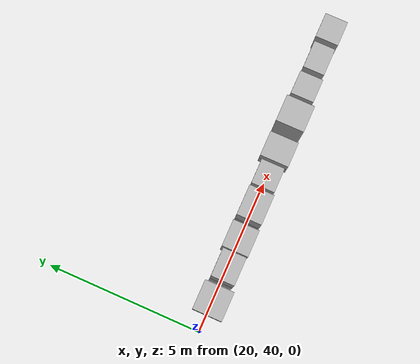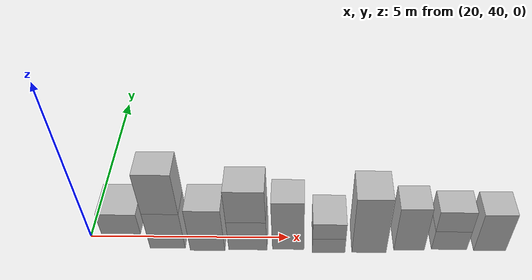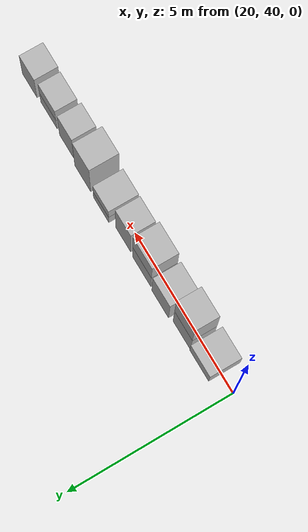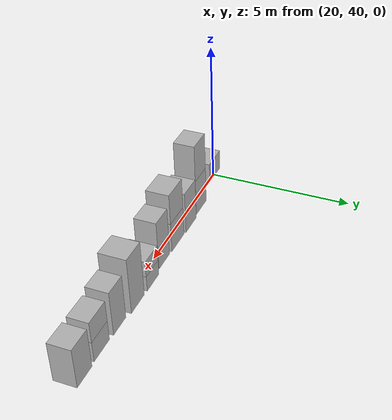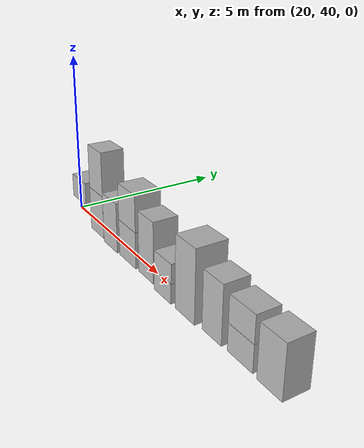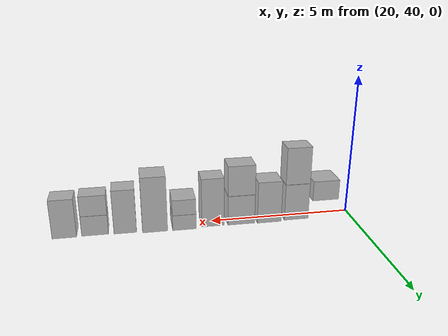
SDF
<sdf version="1.5">
 <world name="default">
  <model name="ground_plane">
   <static>true</static>
   <link name="link">
    <collision name="collision">
     <geometry><plane><normal>0 0 1</normal><size>250 250</size></plane></geometry>
     <surface><friction><ode><mu>1</mu><mu2>1</mu2></ode></friction></surface>
    </collision>
    <visual name="grass">
     <cast_shadows>false</cast_shadows>
     <geometry><mesh><uri>file://grass_plane/meshes/grass_plane.dae</uri></mesh></geometry>
    </visual>
   </link>
  </model>
  <model name="Cardboard_box_top_246">
   <link name="link_0">
    <pose>21 40 0.729825312838 0 0 0</pose>
    <inertial>
     <mass>1</mass>
     <inertia>
      <ixx>0.166667</ixx>
      <ixy>0</ixy>
      <ixz>0</ixz>
      <iyy>0.166667</iyy>
      <iyz>0</iyz>
      <izz>0.166667</izz>
     </inertia>
    </inertial>
    <collision name="collision">
     <geometry>
      <mesh>
       <uri>model://Cardboard_box/meshes/cardboard_box.dae</uri>
       <scale>2.36780935181 2.37298798049 1.82456328209</scale>
      </mesh>
     </geometry>
    </collision>
    <visual name="visual">
     <geometry>
      <mesh>
       <uri>model://Cardboard_box/meshes/cardboard_box.dae</uri>
       <scale>2.36780935181 2.37298798049 1.82456328209</scale>
      </mesh>
     </geometry>
    </visual>
   </link>
   <static>1</static>
  </model>
  <model name="Cardboard_box_247">
   <link name="link_0">
    <pose>22 40 0 0 0 0</pose>
    <inertial>
     <mass>1</mass>
     <inertia>
      <ixx>0.166667</ixx>
      <ixy>0</ixy>
      <ixz>0</ixz>
      <iyy>0.166667</iyy>
      <iyz>0</iyz>
      <izz>0.166667</izz>
     </inertia>
    </inertial>
    <collision name="collision">
     <geometry>
      <mesh>
       <uri>model://Cardboard_box/meshes/cardboard_box.dae</uri>
       <scale>2.19795202082 1.82756459754 3.39685263051</scale>
      </mesh>
     </geometry>
    </collision>
    <visual name="visual">
     <geometry>
      <mesh>
       <uri>model://Cardboard_box/meshes/cardboard_box.dae</uri>
       <scale>2.19795202082 1.82756459754 3.39685263051</scale>
      </mesh>
     </geometry>
    </visual>
   </link>
   <static>1</static>
  </model>
  <model name="Cardboard_box_top_247">
   <link name="link_0">
    <pose>22 40 1.3587410522 0 0 0</pose>
    <inertial>
     <mass>1</mass>
     <inertia>
      <ixx>0.166667</ixx>
      <ixy>0</ixy>
      <ixz>0</ixz>
      <iyy>0.166667</iyy>
      <iyz>0</iyz>
      <izz>0.166667</izz>
     </inertia>
    </inertial>
    <collision name="collision">
     <geometry>
      <mesh>
       <uri>model://Cardboard_box/meshes/cardboard_box.dae</uri>
       <scale>2.19795202082 1.82756459754 3.39685263051</scale>
      </mesh>
     </geometry>
    </collision>
    <visual name="visual">
     <geometry>
      <mesh>
       <uri>model://Cardboard_box/meshes/cardboard_box.dae</uri>
       <scale>2.19795202082 1.82756459754 3.39685263051</scale>
      </mesh>
     </geometry>
    </visual>
   </link>
   <static>1</static>
  </model>
  <model name="Cardboard_box_248">
   <link name="link_0">
    <pose>23 40 0 0 0 0</pose>
    <inertial>
     <mass>1</mass>
     <inertia>
      <ixx>0.166667</ixx>
      <ixy>0</ixy>
      <ixz>0</ixz>
      <iyy>0.166667</iyy>
      <iyz>0</iyz>
      <izz>0.166667</izz>
     </inertia>
    </inertial>
    <collision name="collision">
     <geometry>
      <mesh>
       <uri>model://Cardboard_box/meshes/cardboard_box.dae</uri>
       <scale>2.16110780099 2.12256929466 3.87944365148</scale>
      </mesh>
     </geometry>
    </collision>
    <visual name="visual">
     <geometry>
      <mesh>
       <uri>model://Cardboard_box/meshes/cardboard_box.dae</uri>
       <scale>2.16110780099 2.12256929466 3.87944365148</scale>
      </mesh>
     </geometry>
    </visual>
   </link>
   <static>1</static>
  </model>
  <model name="Cardboard_box_249">
   <link name="link_0">
    <pose>24 40 0 0 0 0</pose>
    <inertial>
     <mass>1</mass>
     <inertia>
      <ixx>0.166667</ixx>
      <ixy>0</ixy>
      <ixz>0</ixz>
      <iyy>0.166667</iyy>
      <iyz>0</iyz>
      <izz>0.166667</izz>
     </inertia>
    </inertial>
    <collision name="collision">
     <geometry>
      <mesh>
       <uri>model://Cardboard_box/meshes/cardboard_box.dae</uri>
       <scale>2.39841780201 1.97761718626 2.74652660842</scale>
      </mesh>
     </geometry>
    </collision>
    <visual name="visual">
     <geometry>
      <mesh>
       <uri>model://Cardboard_box/meshes/cardboard_box.dae</uri>
       <scale>2.39841780201 1.97761718626 2.74652660842</scale>
      </mesh>
     </geometry>
    </visual>
   </link>
   <static>1</static>
  </model>
  <model name="Cardboard_box_top_249">
   <link name="link_0">
    <pose>24 40 1.09861064337 0 0 0</pose>
    <inertial>
     <mass>1</mass>
     <inertia>
      <ixx>0.166667</ixx>
      <ixy>0</ixy>
      <ixz>0</ixz>
      <iyy>0.166667</iyy>
      <iyz>0</iyz>
      <izz>0.166667</izz>
     </inertia>
    </inertial>
    <collision name="collision">
     <geometry>
      <mesh>
       <uri>model://Cardboard_box/meshes/cardboard_box.dae</uri>
       <scale>2.39841780201 1.97761718626 2.74652660842</scale>
      </mesh>
     </geometry>
    </collision>
    <visual name="visual">
     <geometry>
      <mesh>
       <uri>model://Cardboard_box/meshes/cardboard_box.dae</uri>
       <scale>2.39841780201 1.97761718626 2.74652660842</scale>
      </mesh>
     </geometry>
    </visual>
   </link>
   <static>1</static>
  </model>
  <model name="Cardboard_box_250">
   <link name="link_0">
    <pose>25 40 0 0 0 0</pose>
    <inertial>
     <mass>1</mass>
     <inertia>
      <ixx>0.166667</ixx>
      <ixy>0</ixy>
      <ixz>0</ixz>
      <iyy>0.166667</iyy>
      <iyz>0</iyz>
      <izz>0.166667</izz>
     </inertia>
    </inertial>
    <collision name="collision">
     <geometry>
      <mesh>
       <uri>model://Cardboard_box/meshes/cardboard_box.dae</uri>
       <scale>1.96541165493 1.86296537437 4.49485233708</scale>
      </mesh>
     </geometry>
    </collision>
    <visual name="visual">
     <geometry>
      <mesh>
       <uri>model://Cardboard_box/meshes/cardboard_box.dae</uri>
       <scale>1.96541165493 1.86296537437 4.49485233708</scale>
      </mesh>
     </geometry>
    </visual>
   </link>
   <static>1</static>
  </model>
  <model name="Cardboard_box_251">
   <link name="link_0">
    <pose>26 40 0 0 0 0</pose>
    <inertial>
     <mass>1</mass>
     <inertia>
      <ixx>0.166667</ixx>
      <ixy>0</ixy>
      <ixz>0</ixz>
      <iyy>0.166667</iyy>
      <iyz>0</iyz>
      <izz>0.166667</izz>
     </inertia>
    </inertial>
    <collision name="collision">
     <geometry>
      <mesh>
       <uri>model://Cardboard_box/meshes/cardboard_box.dae</uri>
       <scale>2.03698041437 2.32306978243 1.40808855221</scale>
      </mesh>
     </geometry>
    </collision>
    <visual name="visual">
     <geometry>
      <mesh>
       <uri>model://Cardboard_box/meshes/cardboard_box.dae</uri>
       <scale>2.03698041437 2.32306978243 1.40808855221</scale>
      </mesh>
     </geometry>
    </visual>
   </link>
   <static>1</static>
  </model>
  <model name="Cardboard_box_top_251">
   <link name="link_0">
    <pose>26 40 0.563235420882 0 0 0</pose>
    <inertial>
     <mass>1</mass>
     <inertia>
      <ixx>0.166667</ixx>
      <ixy>0</ixy>
      <ixz>0</ixz>
      <iyy>0.166667</iyy>
      <iyz>0</iyz>
      <izz>0.166667</izz>
     </inertia>
    </inertial>
    <collision name="collision">
     <geometry>
      <mesh>
       <uri>model://Cardboard_box/meshes/cardboard_box.dae</uri>
       <scale>2.03698041437 2.32306978243 1.40808855221</scale>
      </mesh>
     </geometry>
    </collision>
    <visual name="visual">
     <geometry>
      <mesh>
       <uri>model://Cardboard_box/meshes/cardboard_box.dae</uri>
       <scale>2.03698041437 2.32306978243 1.40808855221</scale>
      </mesh>
     </geometry>
    </visual>
   </link>
   <static>1</static>
  </model>
  <model name="Cardboard_box_252">
   <link name="link_0">
    <pose>27 40 0 0 0 0</pose>
    <inertial>
     <mass>1</mass>
     <inertia>
      <ixx>0.166667</ixx>
      <ixy>0</ixy>
      <ixz>0</ixz>
      <iyy>0.166667</iyy>
      <iyz>0</iyz>
      <izz>0.166667</izz>
     </inertia>
    </inertial>
    <collision name="collision">
     <geometry>
      <mesh>
       <uri>model://Cardboard_box/meshes/cardboard_box.dae</uri>
       <scale>2.13372426018 2.25000771397 5.07879744296</scale>
      </mesh>
     </geometry>
    </collision>
    <visual name="visual">
     <geometry>
      <mesh>
       <uri>model://Cardboard_box/meshes/cardboard_box.dae</uri>
       <scale>2.13372426018 2.25000771397 5.07879744296</scale>
      </mesh>
     </geometry>
    </visual>
   </link>
   <static>1</static>
  </model>
  <model name="Cardboard_box_253">
   <link name="link_0">
    <pose>28 40 0 0 0 0</pose>
    <inertial>
     <mass>1</mass>
     <inertia>
      <ixx>0.166667</ixx>
      <ixy>0</ixy>
      <ixz>0</ixz>
      <iyy>0.166667</iyy>
      <iyz>0</iyz>
      <izz>0.166667</izz>
     </inertia>
    </inertial>
    <collision name="collision">
     <geometry>
      <mesh>
       <uri>model://Cardboard_box/meshes/cardboard_box.dae</uri>
       <scale>1.90214635755 1.85511564918 4.00462090779</scale>
      </mesh>
     </geometry>
    </collision>
    <visual name="visual">
     <geometry>
      <mesh>
       <uri>model://Cardboard_box/meshes/cardboard_box.dae</uri>
       <scale>1.90214635755 1.85511564918 4.00462090779</scale>
      </mesh>
     </geometry>
    </visual>
   </link>
   <static>1</static>
  </model>
  <model name="Cardboard_box_254">
   <link name="link_0">
    <pose>29 40 0 0 0 0</pose>
    <inertial>
     <mass>1</mass>
     <inertia>
      <ixx>0.166667</ixx>
      <ixy>0</ixy>
      <ixz>0</ixz>
      <iyy>0.166667</iyy>
      <iyz>0</iyz>
      <izz>0.166667</izz>
     </inertia>
    </inertial>
    <collision name="collision">
     <geometry>
      <mesh>
       <uri>model://Cardboard_box/meshes/cardboard_box.dae</uri>
       <scale>2.2160979637 1.70612375583 1.81904434181</scale>
      </mesh>
     </geometry>
    </collision>
    <visual name="visual">
     <geometry>
      <mesh>
       <uri>model://Cardboard_box/meshes/cardboard_box.dae</uri>
       <scale>2.2160979637 1.70612375583 1.81904434181</scale>
      </mesh>
     </geometry>
    </visual>
   </link>
   <static>1</static>
  </model>
  <model name="Cardboard_box_top_254">
   <link name="link_0">
    <pose>29 40 0.727617736724 0 0 0</pose>
    <inertial>
     <mass>1</mass>
     <inertia>
      <ixx>0.166667</ixx>
      <ixy>0</ixy>
      <ixz>0</ixz>
      <iyy>0.166667</iyy>
      <iyz>0</iyz>
      <izz>0.166667</izz>
     </inertia>
    </inertial>
    <collision name="collision">
     <geometry>
      <mesh>
       <uri>model://Cardboard_box/meshes/cardboard_box.dae</uri>
       <scale>2.2160979637 1.70612375583 1.81904434181</scale>
      </mesh>
     </geometry>
    </collision>
    <visual name="visual">
     <geometry>
      <mesh>
       <uri>model://Cardboard_box/meshes/cardboard_box.dae</uri>
       <scale>2.2160979637 1.70612375583 1.81904434181</scale>
      </mesh>
     </geometry>
    </visual>
   </link>
   <static>1</static>
  </model>
  <model name="Cardboard_box_255">
   <link name="link_0">
    <pose>30 40 0 0 0 0</pose>
    <inertial>
     <mass>1</mass>
     <inertia>
      <ixx>0.166667</ixx>
      <ixy>0</ixy>
      <ixz>0</ixz>
      <iyy>0.166667</iyy>
      <iyz>0</iyz>
      <izz>0.166667</izz>
     </inertia>
    </inertial>
    <collision name="collision">
     <geometry>
      <mesh>
       <uri>model://Cardboard_box/meshes/cardboard_box.dae</uri>
       <scale>1.9951884771 1.84357893775 3.51311605381</scale>
      </mesh>
     </geometry>
    </collision>
    <visual name="visual">
     <geometry>
      <mesh>
       <uri>model://Cardboard_box/meshes/cardboard_box.dae</uri>
       <scale>1.9951884771 1.84357893775 3.51311605381</scale>
      </mesh>
     </geometry>
    </visual>
   </link>
   <static>1</static>
  </model>
 </world>
</sdf>
